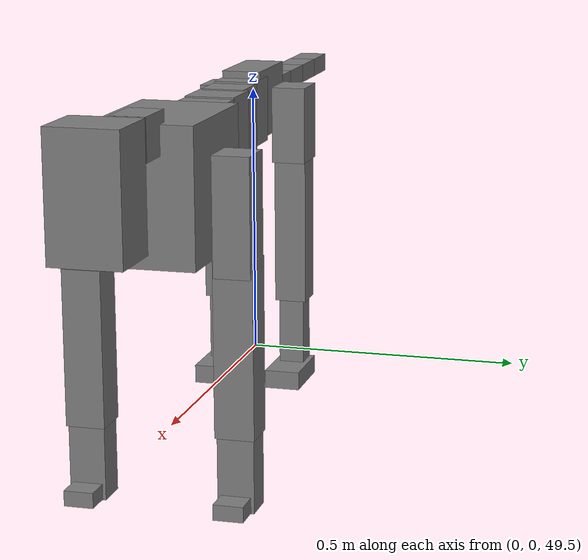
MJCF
<mujoco model="dog">

    <default>
        <joint armature="0.02" stiffness="1" damping="0.2" limited="true"/>
        <geom condim="3" friction="1 0.05 0.05" margin="0.01"/>
        <motor ctrllimited="true" ctrlrange="-1.0 1.0" forcelimited="true" gear="50"/>
    </default>

    <compiler inertiafromgeom="true" angle="radian"/>

    <option timestep="0.016" iterations="50" tolerance="1e-10" solver="Newton" jacobian="dense" cone="pyramidal"/>

    <size nconmax="20000" njmax="60000" nstack="5000000"/>
    <visual>
        <map force="0.1" zfar="30"/>
        <rgba haze="0.15 0.25 0.35 1"/>
        <quality shadowsize="2048"/>
        <global offwidth="800" offheight="800"/>
    </visual>

    <asset>
        <texture type="skybox" builtin="gradient" rgb1="0.3 0.5 0.7" rgb2="0 0 0" width="512" height="512"/>
        <texture name="texplane" type="2d" builtin="checker" rgb1=".2 .3 .4" rgb2=".1 0.15 0.2" width="512" height="512"
                 mark="cross" markrgb=".8 .8 .8"/>
        <texture name="texgeom" type="cube" builtin="flat" mark="cross" width="127" height="1278" rgb1="0.8 0.6 0.4"
                 rgb2="0.8 0.6 0.4" markrgb="1 1 1" random="0.01"/>

        <material name="matplane" reflectance="0.3" texture="texplane" texrepeat="1 1" texuniform="true"/>
        <material name="matgeom" texture="texgeom" texuniform="true" rgba="0.8 0.6 .4 1"/>
    </asset>

    <worldbody>
        <geom name="floor" pos="0 0 0" size="0 0 .25" type="plane" material="matplane" condim="3"/>

        <light directional="false" diffuse=".2 .2 .2" specular="0 0 0" pos="0 0 5" dir="0 0 -1" castshadow="false"/>
        <light mode="targetbodycom" target="torso" directional="false" diffuse=".8 .8 .8" specular="0.3 0.3 0.3"
               pos="0 0 4.0" dir="0 0 -1"/>

        <body name="root" pos="0 0 50">
            <freejoint name="root_1"/>
            <geom type="box" pos="0 0 -0.02" size="0.0774  0.0358  0.063" density="2030"/>

            <body name="spine1" pos="0.054 0 0">
                <joint name="spine1_y" axis="0 1 0" range="0 0.7" limited="true"/>
                <geom type="box" pos="0.02375 0 -0.03" size="0.04375  0.0375  0.05985" density="2030"/>

                <body name="spine2" pos="0.0612 0 0">
                    <joint name="spine2_y" axis="0 1 0" range="-0.15 0.15" limited="true"/>
                    <geom type="box" pos="0.03555  0  -0.04" size="0.04055  0.039  0.06615" density="2030"/>

                    <body name="spine3" pos="0.0730 0 0">
                        <joint name="spine3_y" axis="0 1 0" range="-0.15 0.15" limited="true"/>
                        <geom type="box" pos="0.03555  0  -0.057" size="0.04555  0.0445  0.081" density="2030"/>

                        <body name="spine4" pos="0.0780 0 0">
                            <joint name="spine4_y" axis="0 1 0" range="-0.15 0.15" limited="true"/>
                            <geom type="box" pos="0.05265  0  -0.07" size="0.05265  0.045  0.09135" density="2030"/>

                            <body name="torso" pos="0.1082 0 0">
                                <joint name="torso_y" axis="0 1 0" range="-0.15 0.15" limited="true"/>
                                <geom type="box" pos="0.11925  0  -0.085" size="0.11925  0.085  0.11745"
                                      density="2030"/>

                                <body name="neck1" pos="0.2160  0   0.0180">
                                    <joint name="neck1_y" axis="0 1 0" range="-1.2  -1" limited="true"/>
                                    <geom type="box" pos="0.0423  0  0" size="0.0423  0.03  0.036" density="2325"/>

                                    <body name="neck2" pos="0.0853  0  0">
                                        <joint name="neck2_y" axis="0 1 0" range="0.1  0" limited="true"/>
                                        <geom type="box" pos="0.0423  0  0" size="0.0423  0.03  0.036" density="2325"/>

                                        <body name="head" pos="0.0853  0  0">
                                            <joint name="head_y" axis="0 1 0" range="-0.3  -0.2" limited="true"/>
                                            <geom type="box" pos="0.0531  0  -0.055" size="0.0531  0.06  0.1044"
                                                  density="4030"/>

                                        </body>
                                    </body>
                                </body>

                                <body name="front_shoulder" pos="0.156  0   -0.0480">
                                    <joint name="front_shoulder_y" axis="0 1 0" range="-1 1.5" limited="true"/>
                                    <geom type="box" pos="0 0.13 -0.0737" size="0.0369  0.0316  0.1003" density="1158"/>
                                    <geom type="box" pos="0 -0.13 -0.0737" size="0.0369  0.0316  0.1003"
                                          density="1158"/>

                                    <body name="front_elbow" pos="0  0  -0.1473">
                                        <joint name="front_elbow_y" axis="0 1 0" range="-2 0" limited="true"/>
                                        <geom type="box" pos="0 0.13 -0.1492" size="0.0331  0.0338  0.1492"
                                              density="1081"/>
                                        <geom type="box" pos="0 -0.13 -0.1492" size="0.0331  0.0338  0.1492"
                                              density="1081"/>

                                        <body name="front_wrist" pos="0  0  -0.2984">
                                            <joint name="front_wrist_y" axis="0 1 0" range="-0.2 0" limited="true"/>
                                            <geom type="box" pos="0 0.13 -0.0572" size="0.0283  0.0314  0.0703"
                                                  density="1664"/>
                                            <geom type="box" pos="0 -0.13 -0.0572" size="0.0283  0.0314  0.0703"
                                                  density="1664"/>

                                            <body name="front_finger_end" pos="0  0  -0.1144">
                                                <joint name="front_finger_y" axis="0 1 0" range="-0.4 1"
                                                       limited="true"/>
                                                <geom type="box" pos="0.0258  0.13  0.0014"
                                                      size="0.0474  0.0258  0.0136" density="1515"/>
                                                <geom type="box" pos="0.0258  -0.13  0.0014"
                                                      size="0.0474  0.0258  0.0136" density="1515"/>

                                            </body>

                                        </body>
                                    </body>
                                </body>

                            </body>
                        </body>
                    </body>
                </body>
            </body>

            <body name="back_hip" pos="-0.03 0 -0.018">
                <joint name="back_hip_y" axis="0 1 0" range="-1.5 0.3" limited="true"/>
                <geom type="box" pos="0 0.07 -0.0481" size="0.0400  0.0313  0.0709" density="1154"/>
                <geom type="box" pos="0 -0.07 -0.0481" size="0.0400  0.0313  0.0709" density="1154"/>

                <body name="back_knee" pos="0  0  -0.0963">
                    <joint name="back_knee_y" axis="0 1 0" range="0 2.8" limited="true"/>
                    <geom type="box" pos="0 0.07 -0.1388" size="0.0300  0.0296  0.1543" density="1227"/>
                    <geom type="box" pos="0 -0.07 -0.1388" size="0.0300  0.0296  0.1543" density="1227"/>

                    <body name="back_ankle" pos="0  0  -0.2775">
                        <joint name="back_ankle_y" axis="0 1 0" range="-2.2 0" limited="true"/>
                        <geom type="box" pos="0 0.07 -0.0765" size="0.0234  0.0234  0.0878" density="1284"/>
                        <geom type="box" pos="0 -0.07 -0.0765" size="0.0234  0.0234  0.0878" density="1284"/>

                        <body name="back_toe_end" pos="0  0  -0.1531">
                            <joint name="back_toe_y" axis="0 1 0" range="-0.4 1" limited="true"/>
                            <geom type="box" pos="0.0328  0.07  -0.0021" size="0.0601  0.0328  0.0171" density="1515"/>
                            <geom type="box" pos="0.0328  -0.07  -0.0021" size="0.0601  0.0328  0.0171" density="1515"/>

                        </body>
                    </body>
                </body>
            </body>

            <body name="tail1" pos="-0.074 0 -0.006">
                <joint name="tail1_y" axis="0 1 0" range="-0.2 0.2" limited="true"/>
                <geom type="box" pos="-0.0536  0  0" size="0.045  0.025  0.0175" density="1587"/>

                <body name="tail2" pos="-0.09 0 0">
                    <joint name="tail2_y" axis="0 1 0" range="-0.2 0.2" limited="true"/>
                    <geom type="box" pos="-0.0536  0  0" size="0.045  0.025  0.0175" density="1587"/>

                    <body name="tail3" pos="-0.09 0 0">
                        <joint name="tail3_y" axis="0 1 0" range="-0.2 0.2" limited="true"/>
                        <geom type="box" pos="-0.0536  0  0" size="0.045  0.025  0.0175" density="1587"/>

                        <body name="tail4" pos="-0.09 0 0">
                            <joint name="tail4_y" axis="0 1 0" range="-0.2 0.2" limited="true"/>
                            <geom type="box" pos="-0.0536  0  0" size="0.045  0.025  0.0175" density="1587"/>

                        </body>
                    </body>
                </body>
            </body>
        </body>
    </worldbody>

    <actuator>
        <motor joint="spine1_y" forcerange="-150 150     "/>
        <motor joint="spine2_y" forcerange="-150 150     "/>
        <motor joint="spine3_y" forcerange="-150 150     "/>
        <motor joint="spine4_y" forcerange="-150 150     "/>
        <motor joint="torso_y" forcerange="-150 150     "/>
        <motor joint="neck1_y" forcerange="-100 100       "/>
        <motor joint="neck2_y" forcerange="-100 100       "/>
        <motor joint="head_y" forcerange="-150 150       "/>
        <motor joint="front_shoulder_y" forcerange="-140.26 170.16"/>
        <motor joint="front_elbow_y" forcerange="-191.35 154.44"/>
        <motor joint="front_wrist_y" forcerange="-110.22 141.01"/>
        <motor joint="front_finger_y" forcerange="-73.17 24.58"/>
        <motor joint="back_hip_y" forcerange="-337.99 279.98"/>
        <motor joint="back_knee_y" forcerange="-394.87 235.03"/>
        <motor joint="back_angle_y" forcerange="-101.73 173.01"/>
        <motor joint="back_toe_y" forcerange="-76.54 105.65"/>
        <motor joint="tail1_y" forcerange="-50 50     "/>
        <motor joint="tail2_y" forcerange="-50 50     "/>
        <motor joint="tail3_y" forcerange="-50 50     "/>
        <motor joint="tail4_y" forcerange="-50 50     "/>
    </actuator>
</mujoco>
